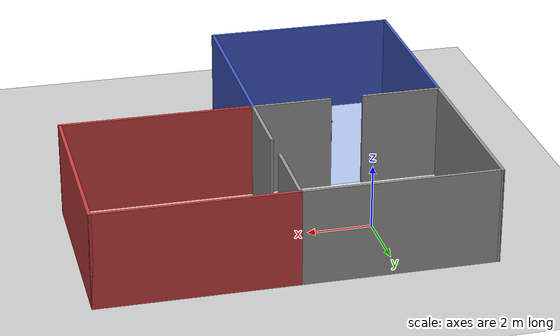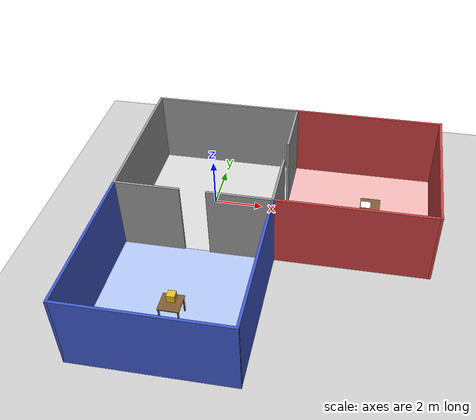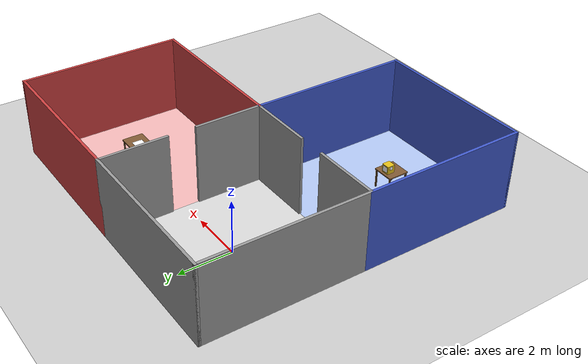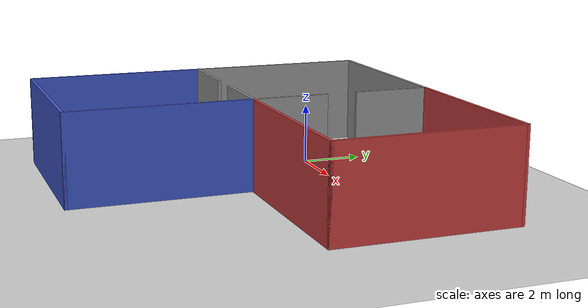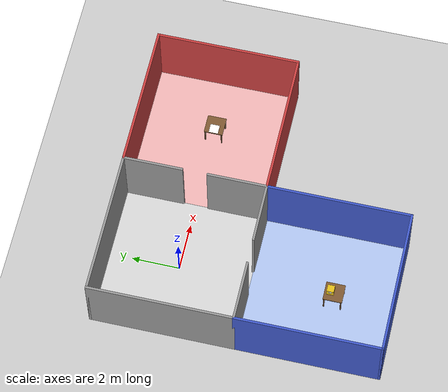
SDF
<?xml version="1.0" ?>
<sdf version="1.8">
  <world name="seminar_world">
    <physics name="1ms" type="ignored">
      <max_step_size>0.001</max_step_size>
      <real_time_factor>1.0</real_time_factor>
    </physics>
    <plugin
      filename="libignition-gazebo-physics-system.so"
      name="ignition::gazebo::systems::Physics">
    </plugin>
    <plugin
      filename="libignition-gazebo-user-commands-system.so"
      name="ignition::gazebo::systems::UserCommands">
    </plugin>
    <plugin
      filename="libignition-gazebo-scene-broadcaster-system.so"
      name="ignition::gazebo::systems::SceneBroadcaster">
    </plugin>
    <plugin
      filename="libignition-gazebo-sensors-system.so"
      name="ignition::gazebo::systems::Sensors">
      <render_engine>ogre2</render_engine>
    </plugin>
    <plugin
      filename="libignition-gazebo-contact-system.so"
      name="ignition::gazebo::systems::Contact">
    </plugin>

    <plugin
      filename="libignition-gazebo-forcetorque-system.so"
      name="ignition::gazebo::systems::ForceTorque">
    </plugin>

    <plugin
      filename="libignition-gazebo-imu-system.so"
      name="ignition::gazebo::systems::Imu">
    </plugin>

    <!-- Light -->
    <light type="directional" name="sun">
      <cast_shadows>true</cast_shadows>
      <pose>0 0 10 0 0 0</pose>
      <diffuse>0.8 0.8 0.8 1</diffuse>
      <specular>0.2 0.2 0.2 1</specular>
      <attenuation>
        <range>1000</range>
        <constant>0.9</constant>
        <linear>0.01</linear>
        <quadratic>0.001</quadratic>
      </attenuation>
      <direction>-0.5 0.1 -0.9</direction>
    </light>

    <!-- Ground Plane -->
    <model name="ground_plane">
      <static>true</static>
      <link name="link">
        <collision name="collision">
          <geometry>
            <plane>
              <normal>0 0 1</normal>
              <size>100 100</size>
            </plane>
          </geometry>
        </collision>
        <visual name="visual">
          <geometry>
            <plane>
              <normal>0 0 1</normal>
              <size>100 100</size>
            </plane>
          </geometry>
          <material>
            <ambient>0.8 0.8 0.8 1</ambient>
            <diffuse>0.8 0.8 0.8 1</diffuse>
          </material>
        </visual>
      </link>
    </model>

    <model name="room_floors">
      <static>true</static>
      <link name="floors">
        <visual name="home_floor">
          <pose>0 0 0.001 0 0 0</pose>
          <geometry><box><size>6 6 0.002</size></box></geometry>
          <material><ambient>0.85 0.85 0.85 1</ambient><diffuse>0.85 0.85 0.85 1</diffuse></material>
        </visual>
        <visual name="blue_floor">
          <pose>0 -6 0.001 0 0 0</pose>
          <geometry><box><size>6 6 0.002</size></box></geometry>
          <material><ambient>0.70 0.78 0.95 1</ambient><diffuse>0.70 0.78 0.95 1</diffuse></material>
        </visual>
        <visual name="red_floor">
          <pose>6 0 0.001 0 0 0</pose>
          <geometry><box><size>6 6 0.002</size></box></geometry>
          <material><ambient>0.95 0.72 0.72 1</ambient><diffuse>0.95 0.72 0.72 1</diffuse></material>
        </visual>
      </link>
    </model>

    <model name="rooms">
      <static>true</static>

      <!-- HOME: left (+Y) and back (-X) walls -->
      <link name="home_left">
        <pose>0 3 1.5 0 0 0</pose>
        <collision name="c"><geometry><box><size>6.1 0.1 3.0</size></box></geometry></collision>
        <visual name="v"><geometry><box><size>6.1 0.1 3.0</size></box></geometry>
          <material><ambient>0.6 0.6 0.6 1</ambient><diffuse>0.6 0.6 0.6 1</diffuse></material></visual>
      </link>
      <link name="home_back">
        <pose>-3 0 1.5 0 0 0</pose>
        <collision name="c"><geometry><box><size>0.1 6.1 3.0</size></box></geometry></collision>
        <visual name="v"><geometry><box><size>0.1 6.1 3.0</size></box></geometry>
          <material><ambient>0.6 0.6 0.6 1</ambient><diffuse>0.6 0.6 0.6 1</diffuse></material></visual>
      </link>

      <!-- HOME <-> RED wall at X=3 with the 1.0 m door at Y in [-0.5, 0.5] -->
      <link name="door_red_left">
        <pose>3 1.75 1.5 0 0 0</pose>
        <collision name="c"><geometry><box><size>0.1 2.5 3.0</size></box></geometry></collision>
        <visual name="v"><geometry><box><size>0.1 2.5 3.0</size></box></geometry>
          <material><ambient>0.6 0.6 0.6 1</ambient><diffuse>0.6 0.6 0.6 1</diffuse></material></visual>
      </link>
      <link name="door_red_right">
        <pose>3 -1.75 1.5 0 0 0</pose>
        <collision name="c"><geometry><box><size>0.1 2.5 3.0</size></box></geometry></collision>
        <visual name="v"><geometry><box><size>0.1 2.5 3.0</size></box></geometry>
          <material><ambient>0.6 0.6 0.6 1</ambient><diffuse>0.6 0.6 0.6 1</diffuse></material></visual>
      </link>

      <!-- HOME <-> BLUE wall at Y=-3 with the 1.0 m door at X in [-0.5, 0.5] -->
      <link name="door_blue_front">
        <pose>1.75 -3 1.5 0 0 0</pose>
        <collision name="c"><geometry><box><size>2.5 0.1 3.0</size></box></geometry></collision>
        <visual name="v"><geometry><box><size>2.5 0.1 3.0</size></box></geometry>
          <material><ambient>0.6 0.6 0.6 1</ambient><diffuse>0.6 0.6 0.6 1</diffuse></material></visual>
      </link>
      <link name="door_blue_back">
        <pose>-1.75 -3 1.5 0 0 0</pose>
        <collision name="c"><geometry><box><size>2.5 0.1 3.0</size></box></geometry></collision>
        <visual name="v"><geometry><box><size>2.5 0.1 3.0</size></box></geometry>
          <material><ambient>0.6 0.6 0.6 1</ambient><diffuse>0.6 0.6 0.6 1</diffuse></material></visual>
      </link>

      <!-- RED room (destination) -->
      <link name="red_left">
        <pose>6 3 1.5 0 0 0</pose>
        <collision name="c"><geometry><box><size>6.1 0.1 3.0</size></box></geometry></collision>
        <visual name="v"><geometry><box><size>6.1 0.1 3.0</size></box></geometry>
          <material><ambient>0.8 0.25 0.25 1</ambient><diffuse>0.8 0.25 0.25 1</diffuse></material></visual>
      </link>
      <link name="red_far">
        <pose>9 0 1.5 0 0 0</pose>
        <collision name="c"><geometry><box><size>0.1 6.1 3.0</size></box></geometry></collision>
        <visual name="v"><geometry><box><size>0.1 6.1 3.0</size></box></geometry>
          <material><ambient>0.8 0.25 0.25 1</ambient><diffuse>0.8 0.25 0.25 1</diffuse></material></visual>
      </link>
      <link name="red_right">
        <pose>6 -3 1.5 0 0 0</pose>
        <collision name="c"><geometry><box><size>6.1 0.1 3.0</size></box></geometry></collision>
        <visual name="v"><geometry><box><size>6.1 0.1 3.0</size></box></geometry>
          <material><ambient>0.8 0.25 0.25 1</ambient><diffuse>0.8 0.25 0.25 1</diffuse></material></visual>
      </link>

      <!-- BLUE room (box) -->
      <link name="blue_back">
        <pose>-3 -6 1.5 0 0 0</pose>
        <collision name="c"><geometry><box><size>0.1 6.1 3.0</size></box></geometry></collision>
        <visual name="v"><geometry><box><size>0.1 6.1 3.0</size></box></geometry>
          <material><ambient>0.25 0.35 0.8 1</ambient><diffuse>0.25 0.35 0.8 1</diffuse></material></visual>
      </link>
      <link name="blue_far">
        <pose>0 -9 1.5 0 0 0</pose>
        <collision name="c"><geometry><box><size>6.1 0.1 3.0</size></box></geometry></collision>
        <visual name="v"><geometry><box><size>6.1 0.1 3.0</size></box></geometry>
          <material><ambient>0.25 0.35 0.8 1</ambient><diffuse>0.25 0.35 0.8 1</diffuse></material></visual>
      </link>
      <link name="blue_front">
        <pose>3 -6 1.5 0 0 0</pose>
        <collision name="c"><geometry><box><size>0.1 6.1 3.0</size></box></geometry></collision>
        <visual name="v"><geometry><box><size>0.1 6.1 3.0</size></box></geometry>
          <material><ambient>0.25 0.35 0.8 1</ambient><diffuse>0.25 0.35 0.8 1</diffuse></material></visual>
      </link>
    </model>

    <!-- Pick table (BLUE room): 4-legged table with top at z = 0.75 m (75 cm)
         Dimensions: top slab 0.8 x 0.8 x 0.04 m, 4 legs 0.05 x 0.05 x 0.71 m. -->
    <model name="pick_table">
      <static>true</static>
      <pose>0 -6.5 0 0 0 0</pose>
      <link name="table">
        <!-- Table top slab: z = 0.73, thickness = 0.04 -> top surface at z = 0.75 m -->
        <collision name="top_c">
          <pose>0 0 0.73 0 0 0</pose>
          <geometry><box><size>0.8 0.8 0.04</size></box></geometry>
        </collision>
        <visual name="top_v">
          <pose>0 0 0.73 0 0 0</pose>
          <geometry><box><size>0.8 0.8 0.04</size></box></geometry>
          <material><ambient>0.5 0.35 0.2 1</ambient><diffuse>0.5 0.35 0.2 1</diffuse></material>
        </visual>

        <!-- 4 Legs: height 0.71 m, center z = 0.355 m, cross-section 0.05 x 0.05 m -->
        <collision name="leg1_c">
          <pose>0.35 0.35 0.355 0 0 0</pose>
          <geometry><box><size>0.05 0.05 0.71</size></box></geometry>
        </collision>
        <visual name="leg1_v">
          <pose>0.35 0.35 0.355 0 0 0</pose>
          <geometry><box><size>0.05 0.05 0.71</size></box></geometry>
          <material><ambient>0.3 0.2 0.1 1</ambient><diffuse>0.3 0.2 0.1 1</diffuse></material>
        </visual>

        <collision name="leg2_c">
          <pose>0.35 -0.35 0.355 0 0 0</pose>
          <geometry><box><size>0.05 0.05 0.71</size></box></geometry>
        </collision>
        <visual name="leg2_v">
          <pose>0.35 -0.35 0.355 0 0 0</pose>
          <geometry><box><size>0.05 0.05 0.71</size></box></geometry>
          <material><ambient>0.3 0.2 0.1 1</ambient><diffuse>0.3 0.2 0.1 1</diffuse></material>
        </visual>

        <collision name="leg3_c">
          <pose>-0.35 0.35 0.355 0 0 0</pose>
          <geometry><box><size>0.05 0.05 0.71</size></box></geometry>
        </collision>
        <visual name="leg3_v">
          <pose>-0.35 0.35 0.355 0 0 0</pose>
          <geometry><box><size>0.05 0.05 0.71</size></box></geometry>
          <material><ambient>0.3 0.2 0.1 1</ambient><diffuse>0.3 0.2 0.1 1</diffuse></material>
        </visual>

        <collision name="leg4_c">
          <pose>-0.35 -0.35 0.355 0 0 0</pose>
          <geometry><box><size>0.05 0.05 0.71</size></box></geometry>
        </collision>
        <visual name="leg4_v">
          <pose>-0.35 -0.35 0.355 0 0 0</pose>
          <geometry><box><size>0.05 0.05 0.71</size></box></geometry>
          <material><ambient>0.3 0.2 0.1 1</ambient><diffuse>0.3 0.2 0.1 1</diffuse></material>
        </visual>
      </link>
    </model>

    <!-- The box (decision D-14): 0.30 m cube, 0.3 kg, resting on 0.75 m table top.
         Centre Z = 0.75 + 0.15 = 0.90 m.
         Yaw -1.5708 so the ArUco marker (-X face) points towards the door (+Y). -->
    <model name="aruco_box">
      <pose>0 -6.35 0.90 0 0 -1.5708</pose>
      <link name="box_link">
        <inertial>
          <mass>0.3</mass>
          <!-- Solid cube 0.3 m, m=0.3 kg: I = m*s^2/6 = 0.0045. -->
          <inertia>
            <ixx>0.0045</ixx>
            <iyy>0.0045</iyy>
            <izz>0.0045</izz>
            <ixy>0</ixy>
            <ixz>0</ixz>
            <iyz>0</iyz>
          </inertia>
        </inertial>
        <collision name="collision">
          <geometry>
            <box><size>0.30 0.30 0.30</size></box>
          </geometry>
          <!-- High friction + stiff contact so the pressed pads don't slide on
               the faces while the squeeze is verified. -->
          <surface>
            <friction>
              <ode>
                <mu>5.0</mu>
                <mu2>5.0</mu2>
              </ode>
            </friction>
            <contact>
              <ode>
                <kp>300000.0</kp>
                <kd>1.0</kd>
              </ode>
            </contact>
          </surface>
        </collision>
        <visual name="visual">
          <geometry>
            <box><size>0.30 0.30 0.30</size></box>
          </geometry>
          <material>
            <ambient>0.9 0.75 0.1 1</ambient>
            <diffuse>0.9 0.75 0.1 1</diffuse>
          </material>
        </visual>
        <visual name="marker">
          <pose>-0.1505 0 0 0 0 0</pose>
          <geometry>
            <box><size>0.001 0.22 0.22</size></box>
          </geometry>
          <material>
            <ambient>1 1 1 1</ambient>
            <diffuse>1 1 1 1</diffuse>
            <specular>0 0 0 1</specular>
            <pbr>
              <metal>
                <albedo_map>materials/textures/aruco_marker_0.png</albedo_map>
                <metalness>0.0</metalness>
                <roughness>1.0</roughness>
              </metal>
            </pbr>
          </material>
        </visual>
        <visual name="marker_left">
          <pose>0 0.1505 0.056 0 0 1.5708</pose>
          <geometry>
            <box><size>0.001 0.12 0.12</size></box>
          </geometry>
          <material>
            <ambient>1 1 1 1</ambient>
            <diffuse>1 1 1 1</diffuse>
            <specular>0 0 0 1</specular>
            <pbr>
              <metal>
                <albedo_map>materials/textures/aruco_marker_1.png</albedo_map>
                <metalness>0.0</metalness>
                <roughness>1.0</roughness>
              </metal>
            </pbr>
          </material>
        </visual>
        <visual name="marker_right">
          <pose>0 -0.1505 0.056 0 0 -1.5708</pose>
          <geometry>
            <box><size>0.001 0.12 0.12</size></box>
          </geometry>
          <material>
            <ambient>1 1 1 1</ambient>
            <diffuse>1 1 1 1</diffuse>
            <specular>0 0 0 1</specular>
            <pbr>
              <metal>
                <albedo_map>materials/textures/aruco_marker_2.png</albedo_map>
                <metalness>0.0</metalness>
                <roughness>1.0</roughness>
              </metal>
            </pbr>
          </material>
        </visual>
      </link>
    </model>

    <!-- Place table (RED room, destination): 4-legged table with top at z = 0.75 m (75 cm)
         Dimensions: top slab 0.8 x 0.8 x 0.04 m, 4 legs 0.05 x 0.05 x 0.71 m. -->
    <model name="place_table">
      <static>true</static>
      <pose>6.5 0 0 0 0 0</pose>
      <link name="table">
        <!-- Table top slab: z = 0.73, thickness = 0.04 -> top surface at z = 0.75 m -->
        <collision name="top_c">
          <pose>0 0 0.73 0 0 0</pose>
          <geometry><box><size>0.8 0.8 0.04</size></box></geometry>
        </collision>
        <visual name="top_v">
          <pose>0 0 0.73 0 0 0</pose>
          <geometry><box><size>0.8 0.8 0.04</size></box></geometry>
          <material><ambient>0.5 0.35 0.2 1</ambient><diffuse>0.5 0.35 0.2 1</diffuse></material>
        </visual>

        <!-- 4 Legs: height 0.71 m, center z = 0.355 m, cross-section 0.05 x 0.05 m -->
        <collision name="leg1_c">
          <pose>0.35 0.35 0.355 0 0 0</pose>
          <geometry><box><size>0.05 0.05 0.71</size></box></geometry>
        </collision>
        <visual name="leg1_v">
          <pose>0.35 0.35 0.355 0 0 0</pose>
          <geometry><box><size>0.05 0.05 0.71</size></box></geometry>
          <material><ambient>0.3 0.2 0.1 1</ambient><diffuse>0.3 0.2 0.1 1</diffuse></material>
        </visual>

        <collision name="leg2_c">
          <pose>0.35 -0.35 0.355 0 0 0</pose>
          <geometry><box><size>0.05 0.05 0.71</size></box></geometry>
        </collision>
        <visual name="leg2_v">
          <pose>0.35 -0.35 0.355 0 0 0</pose>
          <geometry><box><size>0.05 0.05 0.71</size></box></geometry>
          <material><ambient>0.3 0.2 0.1 1</ambient><diffuse>0.3 0.2 0.1 1</diffuse></material>
        </visual>

        <collision name="leg3_c">
          <pose>-0.35 0.35 0.355 0 0 0</pose>
          <geometry><box><size>0.05 0.05 0.71</size></box></geometry>
        </collision>
        <visual name="leg3_v">
          <pose>-0.35 0.35 0.355 0 0 0</pose>
          <geometry><box><size>0.05 0.05 0.71</size></box></geometry>
          <material><ambient>0.3 0.2 0.1 1</ambient><diffuse>0.3 0.2 0.1 1</diffuse></material>
        </visual>

        <collision name="leg4_c">
          <pose>-0.35 -0.35 0.355 0 0 0</pose>
          <geometry><box><size>0.05 0.05 0.71</size></box></geometry>
        </collision>
        <visual name="leg4_v">
          <pose>-0.35 -0.35 0.355 0 0 0</pose>
          <geometry><box><size>0.05 0.05 0.71</size></box></geometry>
          <material><ambient>0.3 0.2 0.1 1</ambient><diffuse>0.3 0.2 0.1 1</diffuse></material>
        </visual>
      </link>
    </model>

    <model name="place_marker">
      <static>true</static>
      <pose>6.32 0 0.7515 0 0 0</pose>
      <link name="mark">
        <visual name="marker">
          <geometry><box><size>0.40 0.40 0.003</size></box></geometry>
          <material>
            <ambient>1 1 1 1</ambient>
            <diffuse>1 1 1 1</diffuse>
            <pbr>
              <metal>
                <albedo_map>materials/textures/aruco_marker_3.png</albedo_map>
              </metal>
            </pbr>
          </material>
        </visual>
      </link>
    </model>

  </world>
</sdf>
